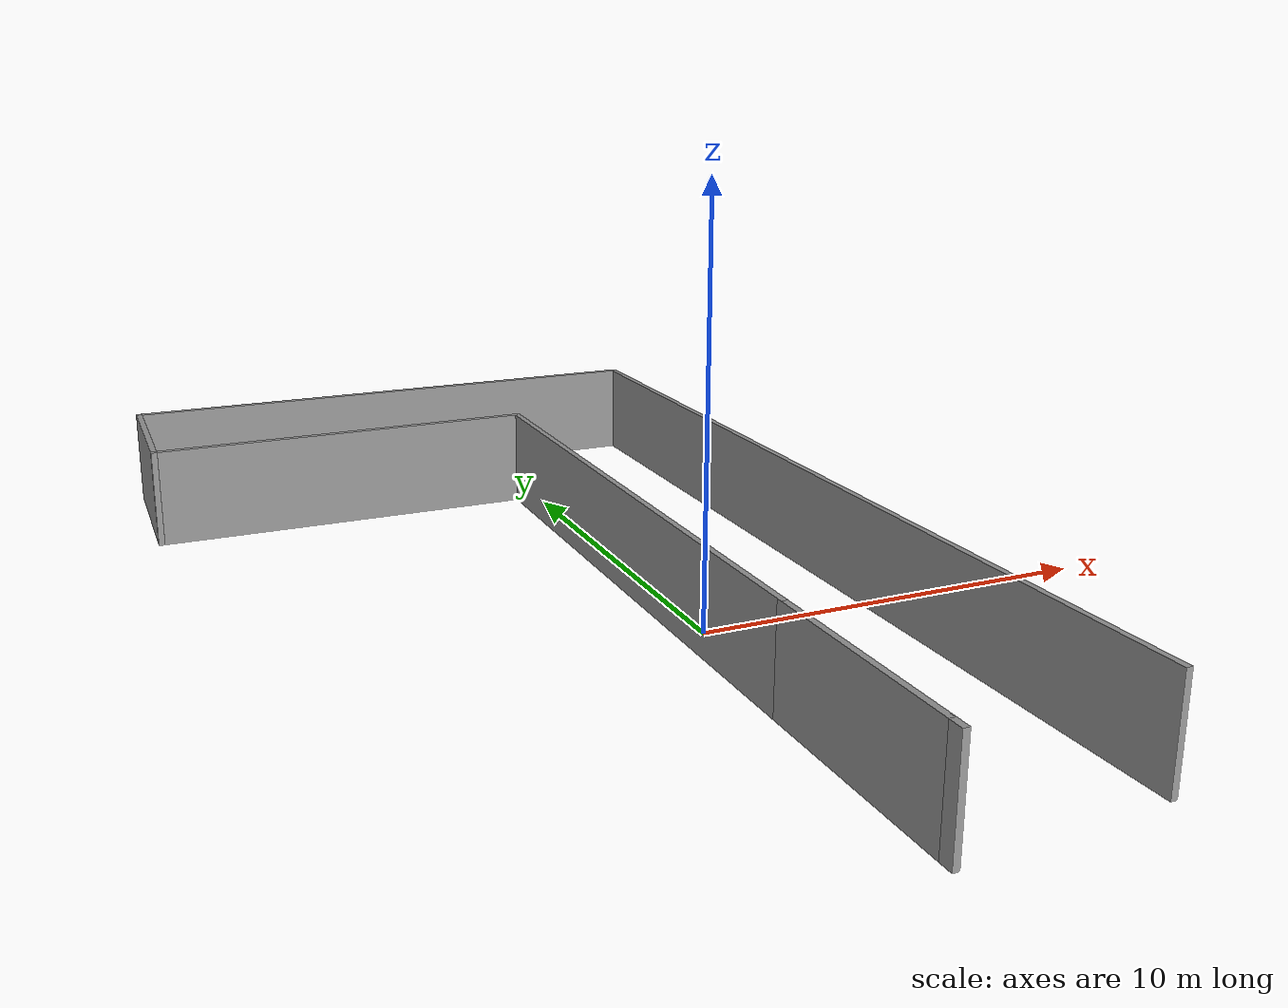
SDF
<?xml version='1.0'?>
<sdf version='1.6'>
  <model name='Lworld'>
    <pose frame=''>-3.10374 2.50504 0 0 -0 0</pose>
    <link name='Wall_0'>
      <collision name='Wall_0_Collision'>
        <geometry>
          <box>
            <size>15 0.15 2.5</size>
          </box>
        </geometry>
        <pose frame=''>0 0 1.25 0 -0 0</pose>
      </collision>
      <visual name='Wall_0_Visual'>
        <pose frame=''>0 0 1.25 0 -0 0</pose>
        <geometry>
          <box>
            <size>15 0.15 2.5</size>
          </box>
        </geometry>
        <material>
          <script>
            <uri>file://media/materials/scripts/gazebo.material</uri>
            <name>Gazebo/Grey</name>
          </script>
          <ambient>1 1 1 1</ambient>
        </material>
      </visual>
      <pose frame=''>2.55 0.674999 0 0 -0 1.5708</pose>
    </link>
    <link name='Wall_1'>
      <collision name='Wall_1_Collision'>
        <geometry>
          <box>
            <size>10 0.15 2.5</size>
          </box>
        </geometry>
        <pose frame=''>0 0 1.25 0 -0 0</pose>
      </collision>
      <visual name='Wall_1_Visual'>
        <pose frame=''>0 0 1.25 0 -0 0</pose>
        <geometry>
          <box>
            <size>10 0.15 2.5</size>
          </box>
        </geometry>
        <material>
          <script>
            <uri>file://media/materials/scripts/gazebo.material</uri>
            <name>Gazebo/Grey</name>
          </script>
          <ambient>1 1 1 1</ambient>
        </material>
      </visual>
      <pose frame=''>-2.375 8.1 0 0 -0 3.14159</pose>
    </link>
    <link name='Wall_2'>
      <collision name='Wall_2_Collision'>
        <geometry>
          <box>
            <size>4.25 0.15 2.5</size>
          </box>
        </geometry>
        <pose frame=''>0 0 1.25 0 -0 0</pose>
      </collision>
      <visual name='Wall_2_Visual'>
        <pose frame=''>0 0 1.25 0 -0 0</pose>
        <geometry>
          <box>
            <size>4.25 0.15 2.5</size>
          </box>
        </geometry>
        <material>
          <script>
            <uri>file://media/materials/scripts/gazebo.material</uri>
            <name>Gazebo/Grey</name>
          </script>
          <ambient>1 1 1 1</ambient>
        </material>
      </visual>
      <pose frame=''>-7.3 10.15 0 0 -0 1.5708</pose>
    </link>
    <link name='Wall_3'>
      <collision name='Wall_3_Collision'>
        <geometry>
          <box>
            <size>14.75 0.15 2.5</size>
          </box>
        </geometry>
        <pose frame=''>0 0 1.25 0 -0 0</pose>
      </collision>
      <visual name='Wall_3_Visual'>
        <pose frame=''>0 0 1.25 0 -0 0</pose>
        <geometry>
          <box>
            <size>14.75 0.15 2.5</size>
          </box>
        </geometry>
        <material>
          <script>
            <uri>file://media/materials/scripts/gazebo.material</uri>
            <name>Gazebo/Grey</name>
          </script>
          <ambient>1 1 1 1</ambient>
        </material>
      </visual>
      <pose frame=''>-1e-06 12.2 0 0 -0 0</pose>
    </link>
    <link name='Wall_4'>
      <collision name='Wall_4_Collision'>
        <geometry>
          <box>
            <size>24.25 0.15 2.5</size>
          </box>
        </geometry>
        <pose frame=''>0 0 1.25 0 -0 0</pose>
      </collision>
      <visual name='Wall_4_Visual'>
        <pose frame=''>0 0 1.25 0 -0 0</pose>
        <geometry>
          <box>
            <size>24.25 0.15 2.5</size>
          </box>
        </geometry>
        <material>
          <script>
            <uri>file://media/materials/scripts/gazebo.material</uri>
            <name>Gazebo/Grey</name>
          </script>
          <ambient>1 1 1 1</ambient>
        </material>
      </visual>
      <pose frame=''>7.3 0.149999 0 0 0 -1.5708</pose>
    </link>
    <link name='Wall_6'>
      <collision name='Wall_6_Collision'>
        <geometry>
          <box>
            <size>5.25 0.15 2.5</size>
          </box>
        </geometry>
        <pose frame=''>0 0 1.25 0 -0 0</pose>
      </collision>
      <visual name='Wall_6_Visual'>
        <pose frame=''>0 0 1.25 0 -0 0</pose>
        <geometry>
          <box>
            <size>5.25 0.15 2.5</size>
          </box>
        </geometry>
        <material>
          <script>
            <uri>file://media/materials/scripts/gazebo.material</uri>
            <name>Gazebo/Grey</name>
          </script>
          <ambient>1 1 1 1</ambient>
        </material>
      </visual>
      <pose frame=''>2.55 -9.3 0 0 0 -1.5708</pose>
    </link>
    <link name='Wall_7'>
      <collision name='Wall_7_Collision'>
        <geometry>
          <box>
            <size>0.5 0.15 2.5</size>
          </box>
        </geometry>
        <pose frame=''>0 0 1.25 0 -0 0</pose>
      </collision>
      <visual name='Wall_7_Visual'>
        <pose frame=''>0 0 1.25 0 -0 0</pose>
        <geometry>
          <box>
            <size>0.5 0.15 2.5</size>
          </box>
        </geometry>
        <material>
          <script>
            <uri>file://media/materials/scripts/gazebo.material</uri>
            <name>Gazebo/Grey</name>
          </script>
          <ambient>1 1 1 1</ambient>
        </material>
      </visual>
      <pose frame=''>2.55 -12.025 0 0 0 -1.5708</pose>
    </link>
    <static>1</static>
  </model>
</sdf>
